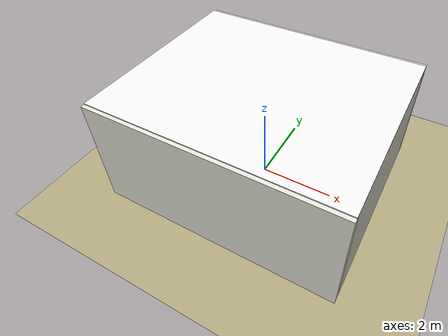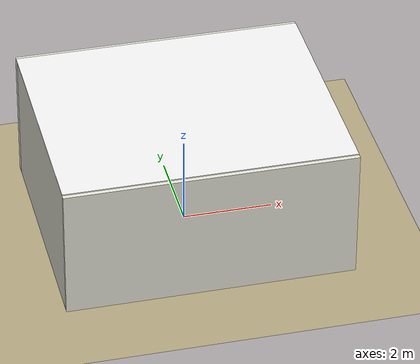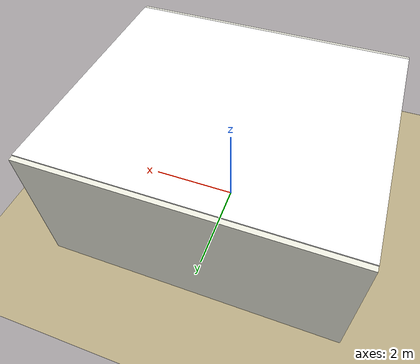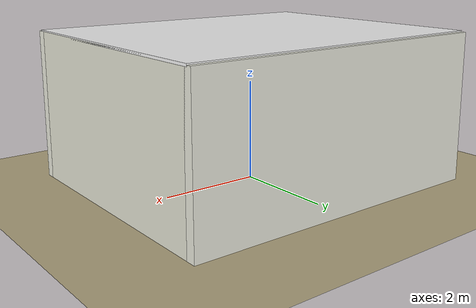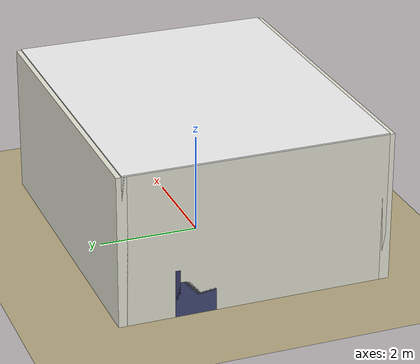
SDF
<?xml version="1.0"?>
<sdf version="1.9">
  <world name="apartment_world">

    <!-- ── Core system plugins ──────────────────────────────────────────── -->
    <plugin filename="gz-sim-physics-system"
            name="gz::sim::systems::Physics"/>
    <plugin filename="gz-sim-scene-broadcaster-system"
            name="gz::sim::systems::SceneBroadcaster"/>
    <plugin filename="gz-sim-contact-system"
            name="gz::sim::systems::Contact"/>
    <plugin filename="gz-sim-user-commands-system"
            name="gz::sim::systems::UserCommands"/>
    <plugin filename="gz-sim-sensors-system"
            name="gz::sim::systems::Sensors">
      <render_engine>ogre2</render_engine>
    </plugin>

    <!-- ── Physics ─────────────────────────────────────────────────────── -->
    <physics name="default_physics" type="ode">
      <max_step_size>0.001</max_step_size>
      <real_time_factor>1.0</real_time_factor>
      <real_time_update_rate>1000</real_time_update_rate>
    </physics>
    <gravity>0 0 -9.81</gravity>

    <!-- ── Scene ───────────────────────────────────────────────────────── -->
    <scene>
      <ambient>0.5 0.5 0.5 1</ambient>
      <background>0.6 0.6 0.7 1</background>
      <shadows>true</shadows>
    </scene>

    <!-- ── Lighting (ceiling light + sun) ──────────────────────────────── -->
    <light name="sun" type="directional">
      <pose>0 0 5 0 0 0</pose>
      <diffuse>0.8 0.8 0.8 1</diffuse>
      <specular>0.2 0.2 0.2 1</specular>
      <direction>-0.3 0.1 -0.9</direction>
      <cast_shadows>true</cast_shadows>
    </light>

    <light name="ceiling_light" type="point">
      <pose>0 0 3.0 0 0 0</pose>
      <diffuse>1 0.98 0.9 1</diffuse>
      <specular>0.1 0.1 0.1 1</specular>
      <attenuation>
        <range>8</range>
        <constant>0.1</constant>
        <linear>0.05</linear>
        <quadratic>0.01</quadratic>
      </attenuation>
    </light>

    <!-- ── Ground plane ─────────────────────────────────────────────────── -->
    <model name="ground_plane">
      <static>true</static>
      <link name="link">
        <collision name="collision">
          <geometry>
            <plane><normal>0 0 1</normal><size>20 20</size></plane>
          </geometry>
        </collision>
        <visual name="visual">
          <geometry>
            <plane><normal>0 0 1</normal><size>20 20</size></plane>
          </geometry>
          <material>
            <ambient>0.7 0.65 0.5 1</ambient>
            <diffuse>0.7 0.65 0.5 1</diffuse>
          </material>
        </visual>
      </link>
    </model>

    <!-- North wall (y = +2.5) -->
    <model name="wall_north">
      <static>true</static>
      <pose>0 2.6 1.5 0 0 0</pose>
      <link name="link">
        <collision name="col"><geometry><box><size>6.4 0.2 3.0</size></box></geometry></collision>
        <visual name="vis">
          <geometry><box><size>6.4 0.2 3.0</size></box></geometry>
          <material><ambient>0.9 0.9 0.85 1</ambient><diffuse>0.9 0.9 0.85 1</diffuse></material>
        </visual>
      </link>
    </model>

    <!-- South wall (y = -2.5) -->
    <model name="wall_south">
      <static>true</static>
      <pose>0 -2.6 1.5 0 0 0</pose>
      <link name="link">
        <collision name="col"><geometry><box><size>6.4 0.2 3.0</size></box></geometry></collision>
        <visual name="vis">
          <geometry><box><size>6.4 0.2 3.0</size></box></geometry>
          <material><ambient>0.9 0.9 0.85 1</ambient><diffuse>0.9 0.9 0.85 1</diffuse></material>
        </visual>
      </link>
    </model>

    <!-- East wall (x = +3.0) -->
    <model name="wall_east">
      <static>true</static>
      <pose>3.1 0 1.5 0 0 0</pose>
      <link name="link">
        <collision name="col"><geometry><box><size>0.2 5.2 3.0</size></box></geometry></collision>
        <visual name="vis">
          <geometry><box><size>0.2 5.2 3.0</size></box></geometry>
          <material><ambient>0.88 0.88 0.82 1</ambient><diffuse>0.88 0.88 0.82 1</diffuse></material>
        </visual>
      </link>
    </model>

    <!-- West wall (x = -3.0) -->
    <model name="wall_west">
      <static>true</static>
      <pose>-3.1 0 1.5 0 0 0</pose>
      <link name="link">
        <collision name="col"><geometry><box><size>0.2 5.2 3.0</size></box></geometry></collision>
        <visual name="vis">
          <geometry><box><size>0.2 5.2 3.0</size></box></geometry>
          <material><ambient>0.88 0.88 0.82 1</ambient><diffuse>0.88 0.88 0.82 1</diffuse></material>
        </visual>
      </link>
    </model>

    <!-- Ceiling -->
    <model name="ceiling">
      <static>true</static>
      <pose>0 0 3.0 0 0 0</pose>
      <link name="link">
        <collision name="col"><geometry><box><size>6.4 5.2 0.05</size></box></geometry></collision>
        <visual name="vis">
          <geometry><box><size>6.4 5.2 0.05</size></box></geometry>
          <material><ambient>0.95 0.95 0.95 1</ambient><diffuse>0.95 0.95 0.95 1</diffuse></material>
        </visual>
      </link>
    </model>

    <!-- Sofa (dark blue/grey, 2.0 x 0.8 x 0.7m) — left side of room -->
    <model name="sofa">
      <static>true</static>
      <pose>-2.2 1.2 0.35 0 0 0</pose>
      <link name="link">
        <collision name="col"><geometry><box><size>2.0 0.8 0.7</size></box></geometry></collision>
        <visual name="vis">
          <geometry><box><size>2.0 0.8 0.7</size></box></geometry>
          <material><ambient>0.25 0.28 0.45 1</ambient><diffuse>0.25 0.28 0.45 1</diffuse></material>
        </visual>
      </link>
    </model>

    <!-- Sofa backrest -->
    <model name="sofa_back">
      <static>true</static>
      <pose>-2.2 1.55 0.65 0 0 0</pose>
      <link name="link">
        <collision name="col"><geometry><box><size>2.0 0.1 0.6</size></box></geometry></collision>
        <visual name="vis">
          <geometry><box><size>2.0 0.1 0.6</size></box></geometry>
          <material><ambient>0.2 0.22 0.38 1</ambient><diffuse>0.2 0.22 0.38 1</diffuse></material>
        </visual>
      </link>
    </model>

    <!-- Coffee table (oak brown, 1.0 x 0.5 x 0.42m) -->
    <model name="coffee_table">
      <static>true</static>
      <pose>-1.2 0.3 0.21 0 0 0</pose>
      <link name="link">
        <collision name="col"><geometry><box><size>1.0 0.5 0.42</size></box></geometry></collision>
        <visual name="vis">
          <geometry><box><size>1.0 0.5 0.42</size></box></geometry>
          <material><ambient>0.55 0.37 0.18 1</ambient><diffuse>0.55 0.37 0.18 1</diffuse></material>
        </visual>
      </link>
    </model>

    <!-- TV stand (dark espresso, 1.5 x 0.4 x 0.5m) — south wall -->
    <model name="tv_stand">
      <static>true</static>
      <pose>0.3 -2.2 0.25 0 0 0</pose>
      <link name="link">
        <collision name="col"><geometry><box><size>1.5 0.4 0.5</size></box></geometry></collision>
        <visual name="vis">
          <geometry><box><size>1.5 0.4 0.5</size></box></geometry>
          <material><ambient>0.15 0.10 0.07 1</ambient><diffuse>0.15 0.10 0.07 1</diffuse></material>
        </visual>
      </link>
    </model>

    <!-- TV (thin black rectangle, 0.9 x 0.05 x 0.55m) on TV stand -->
    <model name="tv">
      <static>true</static>
      <pose>0.3 -2.15 0.775 0 0 0</pose>
      <link name="link">
        <collision name="col"><geometry><box><size>0.9 0.05 0.55</size></box></geometry></collision>
        <visual name="vis">
          <geometry><box><size>0.9 0.05 0.55</size></box></geometry>
          <material><ambient>0.05 0.05 0.05 1</ambient><diffuse>0.05 0.05 0.05 1</diffuse></material>
        </visual>
      </link>
    </model>

    <!-- Dining table (white/birch, 1.2 x 0.8 x 0.75m) — east side -->
    <model name="dining_table">
      <static>true</static>
      <pose>2.0 0.0 0.375 0 0 0</pose>
      <link name="link">
        <collision name="col"><geometry><box><size>1.2 0.8 0.75</size></box></geometry></collision>
        <visual name="vis">
          <geometry><box><size>1.2 0.8 0.75</size></box></geometry>
          <material><ambient>0.92 0.88 0.80 1</ambient><diffuse>0.92 0.88 0.80 1</diffuse></material>
        </visual>
      </link>
    </model>

    <!-- Dining chair 1 -->
    <model name="chair_1">
      <static>true</static>
      <pose>2.0 0.7 0.45 0 0 0</pose>
      <link name="link">
        <collision name="col"><geometry><box><size>0.45 0.45 0.9</size></box></geometry></collision>
        <visual name="vis">
          <geometry><box><size>0.45 0.45 0.9</size></box></geometry>
          <material><ambient>0.65 0.35 0.20 1</ambient><diffuse>0.65 0.35 0.20 1</diffuse></material>
        </visual>
      </link>
    </model>

    <!-- Dining chair 2 -->
    <model name="chair_2">
      <static>true</static>
      <pose>2.0 -0.7 0.45 0 0 0</pose>
      <link name="link">
        <collision name="col"><geometry><box><size>0.45 0.45 0.9</size></box></geometry></collision>
        <visual name="vis">
          <geometry><box><size>0.45 0.45 0.9</size></box></geometry>
          <material><ambient>0.65 0.35 0.20 1</ambient><diffuse>0.65 0.35 0.20 1</diffuse></material>
        </visual>
      </link>
    </model>

    <!-- Bookshelf (tall, white, 0.8 x 0.3 x 1.8m) — north-west corner -->
    <model name="bookshelf">
      <static>true</static>
      <pose>-2.7 2.1 0.9 0 0 0</pose>
      <link name="link">
        <collision name="col"><geometry><box><size>0.8 0.3 1.8</size></box></geometry></collision>
        <visual name="vis">
          <geometry><box><size>0.8 0.3 1.8</size></box></geometry>
          <material><ambient>0.92 0.92 0.92 1</ambient><diffuse>0.92 0.92 0.92 1</diffuse></material>
        </visual>
      </link>
    </model>

    <!-- Books on shelf (colour blocks — improves visual features) -->
    <model name="books_row1">
      <static>true</static>
      <pose>-2.7 1.97 0.4 0 0 0</pose>
      <link name="link">
        <collision name="col"><geometry><box><size>0.75 0.05 0.25</size></box></geometry></collision>
        <visual name="vis">
          <geometry><box><size>0.75 0.05 0.25</size></box></geometry>
          <material><ambient>0.8 0.15 0.1 1</ambient><diffuse>0.8 0.15 0.1 1</diffuse></material>
        </visual>
      </link>
    </model>
    <model name="books_row2">
      <static>true</static>
      <pose>-2.7 1.97 0.9 0 0 0</pose>
      <link name="link">
        <collision name="col"><geometry><box><size>0.75 0.05 0.25</size></box></geometry></collision>
        <visual name="vis">
          <geometry><box><size>0.75 0.05 0.25</size></box></geometry>
          <material><ambient>0.1 0.3 0.8 1</ambient><diffuse>0.1 0.3 0.8 1</diffuse></material>
        </visual>
      </link>
    </model>

    <!-- Plant 1 (green cylinder, tall) -->
    <model name="plant_1">
      <static>true</static>
      <pose>2.7 -2.0 0.6 0 0 0</pose>
      <link name="link">
        <collision name="col"><geometry><cylinder><radius>0.15</radius><length>1.2</length></cylinder></geometry></collision>
        <visual name="vis">
          <geometry><cylinder><radius>0.15</radius><length>1.2</length></cylinder></geometry>
          <material><ambient>0.1 0.55 0.1 1</ambient><diffuse>0.1 0.55 0.1 1</diffuse></material>
        </visual>
      </link>
    </model>

    <!-- Plant 2 (smaller, round pot) -->
    <model name="plant_2">
      <static>true</static>
      <pose>2.3 -2.0 0.3 0 0 0</pose>
      <link name="link">
        <collision name="col"><geometry><sphere><radius>0.2</radius></sphere></geometry></collision>
        <visual name="vis">
          <geometry><sphere><radius>0.2</radius></sphere></geometry>
          <material><ambient>0.15 0.6 0.15 1</ambient><diffuse>0.15 0.6 0.15 1</diffuse></material>
        </visual>
      </link>
    </model>

    <!-- Rug on floor (flat box, different floor colour for visual feature) -->
    <model name="rug">
      <static>true</static>
      <pose>-0.5 0.5 0.01 0 0 0</pose>
      <link name="link">
        <collision name="col"><geometry><box><size>2.0 1.5 0.02</size></box></geometry></collision>
        <visual name="vis">
          <geometry><box><size>2.0 1.5 0.02</size></box></geometry>
          <material><ambient>0.55 0.1 0.1 1</ambient><diffuse>0.55 0.1 0.1 1</diffuse></material>
        </visual>
      </link>
    </model>

    <!-- Wall art / picture (adds visual feature on north wall) -->
    <model name="wall_art_north">
      <static>true</static>
      <pose>1.5 2.55 1.5 0 0 0</pose>
      <link name="link">
        <collision name="col"><geometry><box><size>0.6 0.02 0.4</size></box></geometry></collision>
        <visual name="vis">
          <geometry><box><size>0.6 0.02 0.4</size></box></geometry>
          <material><ambient>0.2 0.5 0.7 1</ambient><diffuse>0.2 0.5 0.7 1</diffuse></material>
        </visual>
      </link>
    </model>

  </world>
</sdf>
